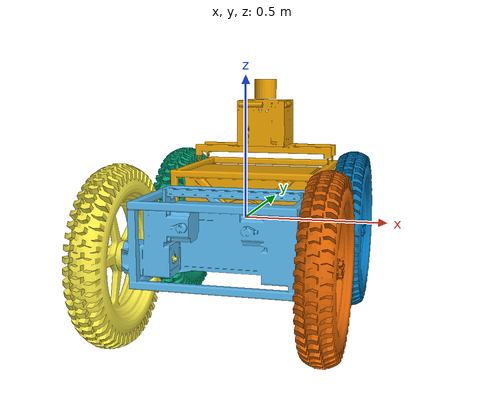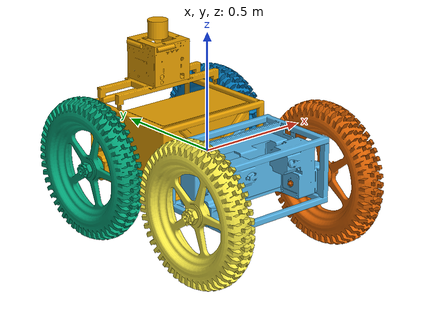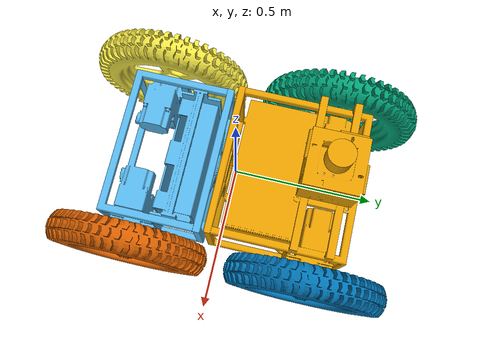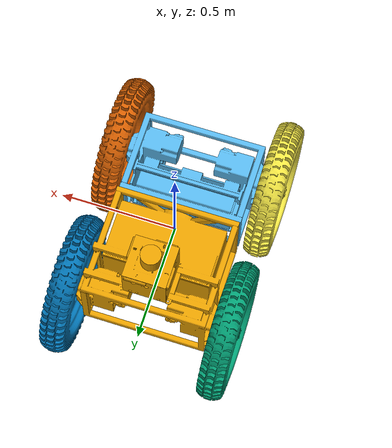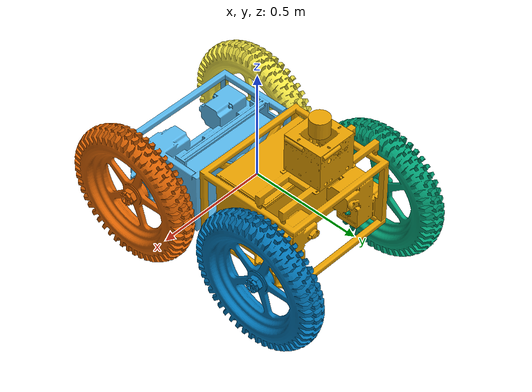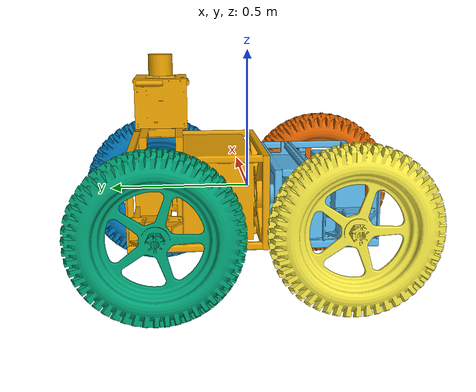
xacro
<?xml version='1.0' encoding='utf-8'?>
<robot name='r2' xmlns:xacro="http://ros.org/wiki/xacro">
  <xacro:arg name="name" default="r2"/>
  <xacro:property name="robot_namespace" value="$(arg name)"/>

  <link name='${robot_namespace}/base_link'>
    <inertial>
      <origin xyz='8e-05 0.035474 0.022792' rpy='0 -0 0'/>
      <mass value='60.4249'/>
      <inertia ixx='4.49753' ixy='0.00199937' ixz='-0.00152659' iyy='2.46329' iyz='-0.424901' izz='5.57714'/>
    </inertial>
    <collision name='base_link_collision'>
      <origin xyz='0 0 0' rpy='0 -0 0'/>
      <geometry>
        <mesh filename='package://explorer_r2_sensor_config_1/meshes/base_link.STL' scale='1 1 1'/>
      </geometry>
    </collision>
    <collision name='base_link_fixed_joint_lump__sensor_payload_link_collision_1'>
      <origin xyz='0.0903 0.31054 0.23288' rpy='1.5708 -0 1.5708'/>
      <geometry>
        <mesh filename='package://explorer_r2_sensor_config_1/meshes/sensor_payload_link.STL' scale='1 1 1'/>
      </geometry>
    </collision>
    <visual name='base_link_visual'>
      <origin xyz='0 0 0' rpy='0 -0 0'/>
      <geometry>
        <mesh filename='package://explorer_r2_sensor_config_1/meshes/base_link.STL' scale='1 1 1'/>
      </geometry>
    </visual>
    <visual name='base_link_fixed_joint_lump__sensor_payload_link_visual_1'>
      <origin xyz='0.0903 0.31054 0.23288' rpy='1.5708 -0 1.5708'/>
      <geometry>
        <mesh filename='package://explorer_r2_sensor_config_1/meshes/sensor_payload_link.STL' scale='1 1 1'/>
      </geometry>
    </visual>
    <visual name='base_link_fixed_joint_lump__front_depth_camera_link_visual_2'>
      <origin xyz='0.0353 0.40054 0.38988' rpy='1.5708 -0 1.5708'/>
      <geometry>
        <cylinder radius='0.01' length='0.09'/>
      </geometry>
    </visual>
    <visual name='base_link_fixed_joint_lump__front_laser_visual_visual_3'>
      <origin xyz='-0.001835 0.310583 0.44788' rpy='5e-06 0 1.5708'/>
      <geometry>
        <cylinder radius='0.04267' length='0.07357'/>
      </geometry>
    </visual>
    <visual name='base_link_fixed_joint_lump__left_depth_camera_link_visual_4'>
      <origin xyz='-0.0917 0.348539 0.389881' rpy='1.5708 -4e-06 -3.14159'/>
      <geometry>
        <cylinder radius='0.01' length='0.09'/>
      </geometry>
    </visual>
    <visual name='base_link_fixed_joint_lump__rear_depth_camera_link_visual_5'>
      <origin xyz='-0.037199 0.22054 0.38988' rpy='1.5708 -0 -1.5708'/>
      <geometry>
        <cylinder radius='0.01' length='0.09'/>
      </geometry>
    </visual>
    <visual name='base_link_fixed_joint_lump__right_depth_camera_link_visual_6'>
      <origin xyz='0.090301 0.27254 0.38988' rpy='1.5708 -4e-06 3.14159'/>
      <geometry>
        <cylinder radius='0.01' length='0.09'/>
      </geometry>
    </visual>
  </link>
  <link name='${robot_namespace}/Rear_Rocker_Link'>
    <inertial>
      <origin xyz='-0.191018 -0.006403 0' rpy='0 -0 0'/>
      <mass value='23.1126'/>
      <inertia ixx='0.848992' ixy='0.00301842' ixz='5.21788e-06' iyy='1.03049' iyz='1.2171e-07' izz='0.43679'/>
    </inertial>
    <collision name='Rear_Rocker_Link_collision'>
      <origin xyz='0 0 0' rpy='0 -0 0'/>
      <geometry>
        <mesh filename='package://explorer_r2_sensor_config_1/meshes/Rear_Rocker_Link.STL' scale='1 1 1'/>
      </geometry>
    </collision>
    <visual name='Rear_Rocker_Link_visual'>
      <origin xyz='0 0 0' rpy='0 -0 0'/>
      <geometry>
        <mesh filename='package://explorer_r2_sensor_config_1/meshes/Rear_Rocker_Link.STL' scale='1 1 1'/>
      </geometry>
    </visual>
  </link>
  <link name='${robot_namespace}/left_front_wheel_link'>
    <inertial>
      <origin xyz='0.007124 -1.6e-05 4e-06' rpy='0 -0 0'/>
      <mass value='11.5398'/>
      <inertia ixx='0.127932' ixy='6.41777e-06' ixz='2.40271e-06' iyy='0.0695645' iyz='1.35439e-09' izz='0.0695643'/>
    </inertial>
    <collision name='left_front_wheel_link_collision'>
      <origin xyz='0 0 0' rpy='0 1.5708 0'/>
      <geometry>
        <cylinder radius='0.31' length='0.1125'/>
      </geometry>
    </collision>
    <visual name='left_front_wheel_link_visual'>
      <origin xyz='0 0 0' rpy='0 -0 0'/>
      <geometry>
        <mesh filename='package://explorer_r2_sensor_config_1/meshes/left_front_wheel_link.STL' scale='1 1 1'/>
      </geometry>
    </visual>
  </link>
  <link name='${robot_namespace}/left_rear_wheel_link'>
    <inertial>
      <origin xyz='0.007124 -1.6e-05 4e-06' rpy='0 -0 0'/>
      <mass value='11.5398'/>
      <inertia ixx='0.127932' ixy='6.41777e-06' ixz='2.40271e-06' iyy='0.0695645' iyz='1.35439e-09' izz='0.0695643'/>
    </inertial>
    <collision name='left_rear_wheel_link_collision'>
      <origin xyz='0 0 0' rpy='0 1.5708 0'/>
      <geometry>
        <cylinder radius='0.31' length='0.1125'/>
      </geometry>
    </collision>
    <visual name='left_rear_wheel_link_visual'>
      <origin xyz='0 0 0' rpy='0 -0 0'/>
      <geometry>
        <mesh filename='package://explorer_r2_sensor_config_1/meshes/left_rear_wheel_link.STL' scale='1 1 1'/>
      </geometry>
    </visual>
  </link>
  <link name='${robot_namespace}/right_front_wheel_link'>
    <inertial>
      <origin xyz='0.007124 -1.6e-05 4e-06' rpy='0 -0 0'/>
      <mass value='11.5398'/>
      <inertia ixx='0.127932' ixy='6.41777e-06' ixz='2.40271e-06' iyy='0.0695645' iyz='1.35439e-09' izz='0.0695643'/>
    </inertial>
    <collision name='right_front_wheel_link_collision'>
      <origin xyz='0 0 0' rpy='0 1.5708 0'/>
      <geometry>
        <cylinder radius='0.31' length='0.1125'/>
      </geometry>
    </collision>
    <visual name='right_front_wheel_link_visual'>
      <origin xyz='0 0 0' rpy='0 -0 0'/>
      <geometry>
        <mesh filename='package://explorer_r2_sensor_config_1/meshes/right_front_wheel_link.STL' scale='1 1 1'/>
      </geometry>
    </visual>
  </link>
  <link name='${robot_namespace}/right_rear_wheel_link'>
    <inertial>
      <origin xyz='0.007124 -1.6e-05 4e-06' rpy='0 -0 0'/>
      <mass value='11.5398'/>
      <inertia ixx='0.127932' ixy='6.41777e-06' ixz='2.40271e-06' iyy='0.0695645' iyz='1.35439e-09' izz='0.0695643'/>
    </inertial>
    <collision name='right_rear_wheel_link_collision'>
      <origin xyz='0 0 0' rpy='0 1.5708 0'/>
      <geometry>
        <cylinder radius='0.31' length='0.1125'/>
      </geometry>
    </collision>
    <visual name='right_rear_wheel_link_visual'>
      <origin xyz='0 0 0' rpy='0 -0 0'/>
      <geometry>
        <mesh filename='package://explorer_r2_sensor_config_1/meshes/right_rear_wheel_link.STL' scale='1 1 1'/>
      </geometry>
    </visual>
  </link>
  <joint name='Center Pivot' type='revolute'>
    <origin xyz='0 -0.047625 -0.0254' rpy='1.5708 -0 1.5708'/>
    <parent link='${robot_namespace}/base_link'/>
    <child link='${robot_namespace}/Rear_Rocker_Link'/>
    <dynamics damping='0' friction='0' />
    <axis xyz='-1 0 0'/>
    <limit lower='-1e+16' upper='1e+16' effort='-1' velocity='-1'/>
  </joint>
  <joint name='left_front_wheel' type='revolute'>
    <origin xyz='-0.343 0.33421 -0.091538' rpy='-0.013747 0 0'/>
    <parent link='${robot_namespace}/base_link'/>
    <child link='${robot_namespace}/left_front_wheel_link'/>
    <dynamics damping='10' friction='0.1' />
    <axis xyz='-1 0 0'/>
    <limit lower='-1e+16' upper='1e+16' effort='-1' velocity='-1'/>
  </joint>
  <joint name='left_rear_wheel' type='revolute'>
    <origin xyz='-0.287 -0.058 -0.343' rpy='2.342 -1.571 2.356'/>
    <parent link='${robot_namespace}/Rear_Rocker_Link'/>
    <child link='${robot_namespace}/left_rear_wheel_link'/>
    <dynamics damping='10' friction='0.1' />
    <axis xyz='-1 0 0'/>
    <limit lower='-1e+16' upper='1e+16' effort='-1' velocity='-1'/>
  </joint>
  <joint name='right_front_wheel' type='revolute'>
    <origin xyz='0.343 0.33421 -0.091538' rpy='-0.013747 -0 -3.14159'/>
    <parent link='${robot_namespace}/base_link'/>
    <child link='${robot_namespace}/right_front_wheel_link'/>
    <dynamics damping='10' friction='0.1' />
    <axis xyz='1 0 0'/>
    <limit lower='-1e+16' upper='1e+16' effort='-1' velocity='-1'/>
  </joint>
  <joint name='right_rear_wheel' type='revolute'>
    <origin xyz='-0.287 -0.058 0.343' rpy='2.342 1.571 -2.356'/>
    <parent link='${robot_namespace}/Rear_Rocker_Link'/>
    <child link='${robot_namespace}/right_rear_wheel_link'/>
    <dynamics damping='10' friction='0.1' />
    <axis xyz='1 0 0'/>
    <limit lower='-1e+16' upper='1e+16' effort='-1' velocity='-1'/>
  </joint>
</robot>
